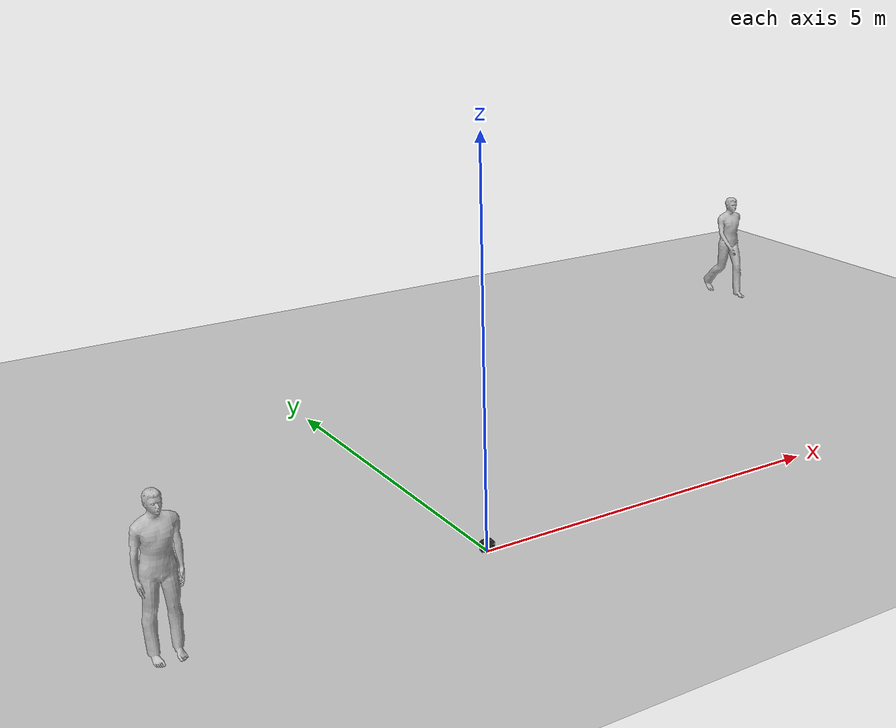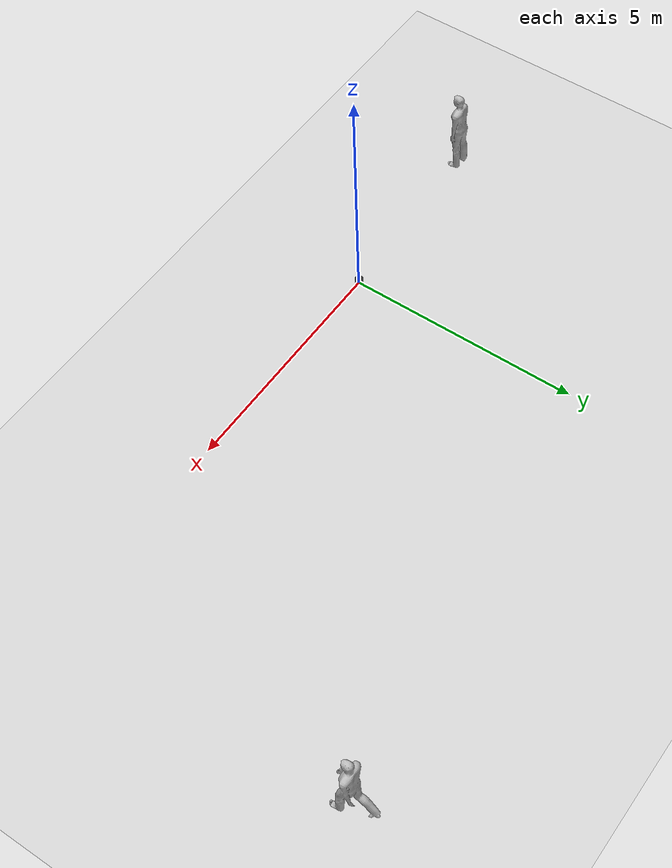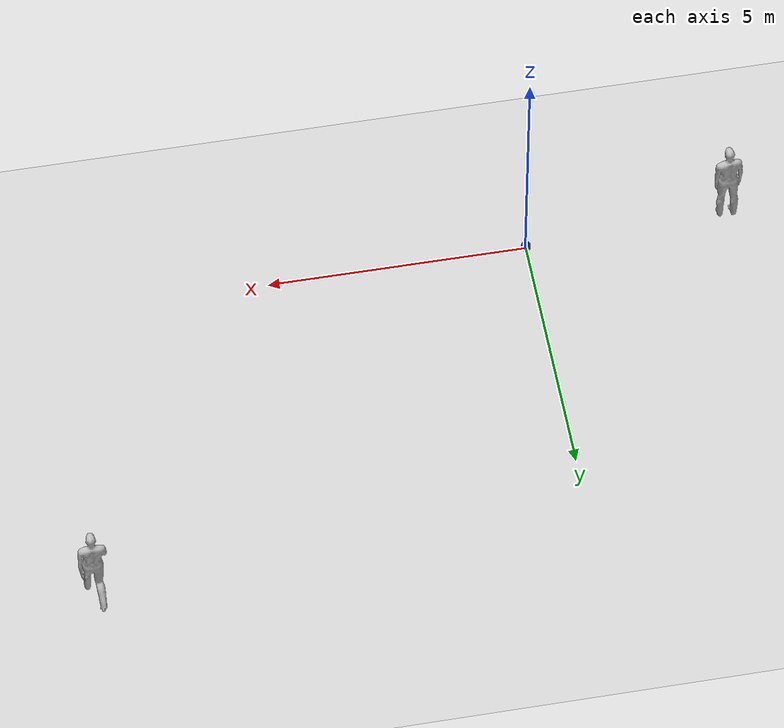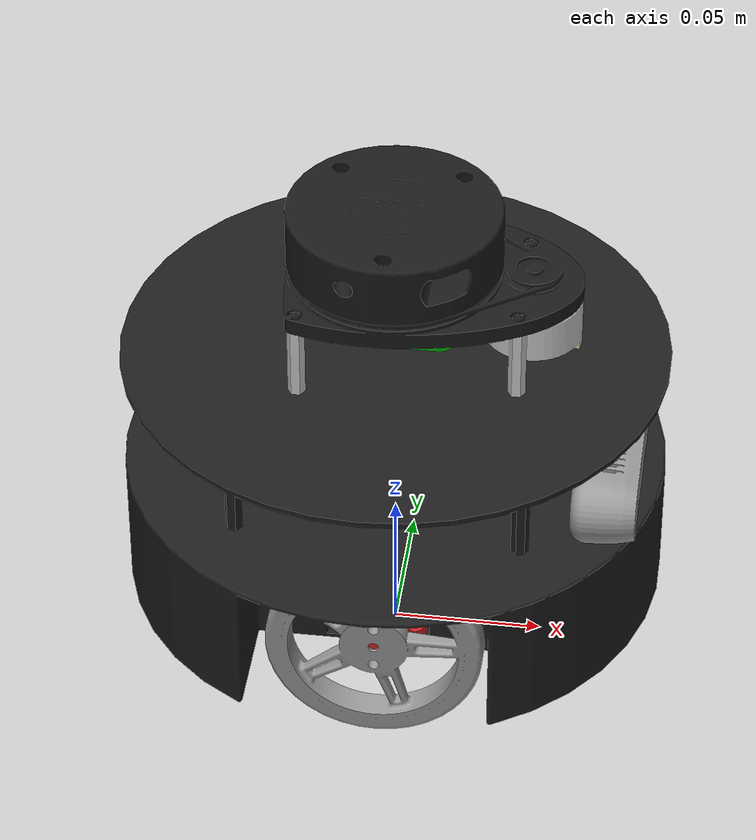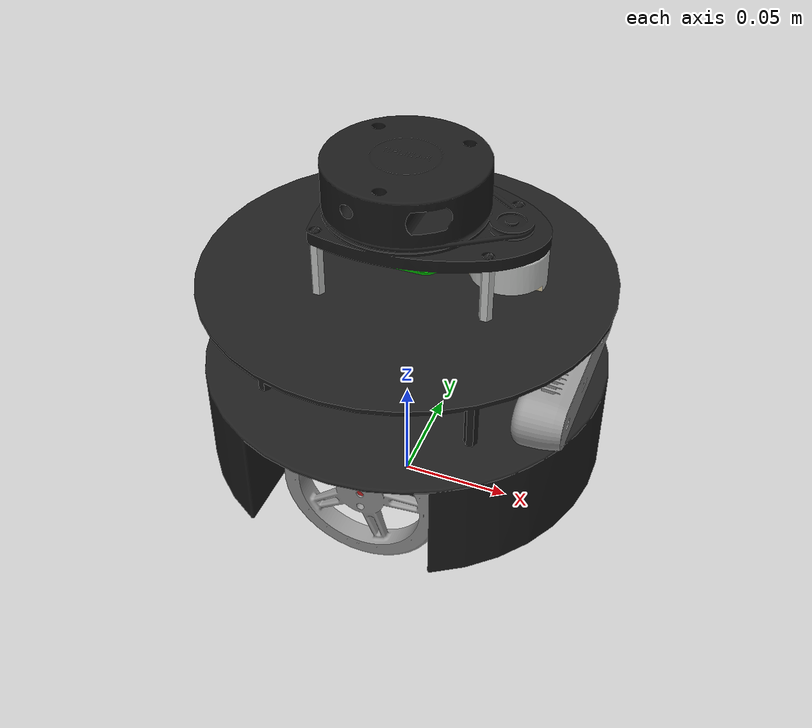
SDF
<sdf version="1.7">
 <world name="default">
  <light name="sun" type="directional">
   <pose>0 0 10 0 -0 0</pose>
   <diffuse>0.8 0.8 0.8 1</diffuse>
   <specular>0.2 0.2 0.2 1</specular>
   <attenuation>
    <range>1000</range>
    <constant>0.9</constant>
    <linear>0.01</linear>
    <quadratic>0.001</quadratic>
   </attenuation>
   <direction>-0.5 0.1 -0.9</direction>
   <spot><inner_angle>0</inner_angle><outer_angle>0</outer_angle><falloff>0</falloff></spot>
  </light>
  <model name="ground_plane">
   <static>1</static>
   <link name="link">
    <collision name="collision">
     <geometry><plane><normal>0 0 1</normal><size>100 100</size></plane></geometry>
     <surface><friction><ode><mu>100</mu><mu2>50</mu2></ode></friction></surface>
    </collision>
    <visual name="visual">
     <cast_shadows>0</cast_shadows>
     <geometry><plane><normal>0 0 1</normal><size>100 100</size></plane></geometry>
     <material>
      <script><uri>file://media/materials/scripts/gazebo.material</uri><name>Gazebo/Grey</name></script>
     </material>
    </visual>
   </link>
  </model>
  <gravity>0 0 -9.8</gravity>
  <magnetic_field>6e-06 2.3e-05 -4.2e-05</magnetic_field>
  <atmosphere type="adiabatic"/>
  <physics type="ode">
   <max_step_size>0.001</max_step_size>
   <real_time_factor>1</real_time_factor>
   <real_time_update_rate>1000</real_time_update_rate>
  </physics>
  <scene><ambient>0.4 0.4 0.4 1</ambient><background>0.7 0.7 0.7 1</background><shadows>1</shadows></scene>
  <audio><device>default</device></audio>
  <spherical_coordinates>
   <surface_model>EARTH_WGS84</surface_model>
   <latitude_deg>0</latitude_deg>
   <longitude_deg>0</longitude_deg>
   <elevation>0</elevation>
   <heading_deg>0</heading_deg>
  </spherical_coordinates>
  <model name="my_robot">
   <link name="base_footprint">
    <inertial>
     <pose>0.00635 0 0.063845 0 -0 0</pose>
     <mass>0.548</mass>
     <inertia>
      <ixx>0.00276354</ixx>
      <ixy>-4.49106e-07</ixy>
      <ixz>-0.000100096</ixz>
      <iyy>0.0027147</iyy>
      <iyz>7.62e-07</iyz>
      <izz>0.00211636</izz>
     </inertia>
    </inertial>
    <collision name="base_footprint_fixed_joint_lump__base_link_collision">
     <pose>0 0 0.028 0 0 -1.5708</pose>
     <geometry>
      <mesh><scale>1 1 1</scale><uri>model://robot_description/meshes/base_link.dae</uri></mesh>
     </geometry>
     <surface><friction><ode><mu>0.01</mu><mu2>0.01</mu2></ode></friction></surface>
    </collision>
    <collision name="base_footprint_fixed_joint_lump__camera_link_collision_1">
     <pose>0.075 0 0.077 0 -0 1.5708</pose>
     <geometry><mesh><scale>1 1 1</scale><uri>model://robot_description/meshes/camera.dae</uri></mesh></geometry>
    </collision>
    <collision name="base_footprint_fixed_joint_lump__left_motor_link_collision_2">
     <pose>0 0.03348 0.036 0 -0 1.5708</pose>
     <geometry><mesh><scale>1 1 1</scale><uri>model://robot_description/meshes/motor.dae</uri></mesh></geometry>
    </collision>
    <collision name="base_footprint_fixed_joint_lump__lidar_link_collision_3">
     <pose>0 0 0.1396 0 0 -1.5708</pose>
     <geometry><mesh><scale>1 1 1</scale><uri>model://robot_description/meshes/rplidar.dae</uri></mesh></geometry>
    </collision>
    <collision name="base_footprint_fixed_joint_lump__right_motor_link_collision_4">
     <pose>0 -0.03348 0.036 0 0 -1.5708</pose>
     <geometry><mesh><scale>1 1 1</scale><uri>model://robot_description/meshes/motor.dae</uri></mesh></geometry>
    </collision>
    <visual name="base_footprint_fixed_joint_lump__base_link_visual">
     <pose>0 0 0.028 0 0 -1.5708</pose>
     <geometry>
      <mesh><scale>1 1 1</scale><uri>model://robot_description/meshes/base_link.dae</uri></mesh>
     </geometry>
     <material>
      <script><name>Gazebo/Black</name><uri>file://media/materials/scripts/gazebo.material</uri></script>
     </material>
    </visual>
    <visual name="base_footprint_fixed_joint_lump__camera_link_visual_1">
     <pose>0.075 0 0.077 0 -0 1.5708</pose>
     <geometry><mesh><scale>1 1 1</scale><uri>model://robot_description/meshes/camera.dae</uri></mesh></geometry>
     <material>
      <script><name>Gazebo/Gray</name><uri>file://media/materials/scripts/gazebo.material</uri></script>
     </material>
    </visual>
    <visual name="base_footprint_fixed_joint_lump__left_motor_link_visual_2">
     <pose>0 0.03348 0.036 0 -0 1.5708</pose>
     <geometry><mesh><scale>1 1 1</scale><uri>model://robot_description/meshes/motor.dae</uri></mesh></geometry>
     <material>
      <script><name>Gazebo/Red</name><uri>file://media/materials/scripts/gazebo.material</uri></script>
     </material>
    </visual>
    <visual name="base_footprint_fixed_joint_lump__lidar_link_visual_3">
     <pose>0 0 0.1396 0 -0 1.5708</pose>
     <geometry><mesh><scale>1 1 1</scale><uri>model://robot_description/meshes/rplidar.dae</uri></mesh></geometry>
    </visual>
    <visual name="base_footprint_fixed_joint_lump__right_motor_link_visual_4">
     <pose>0 -0.03348 0.036 0 0 -1.5708</pose>
     <geometry><mesh><scale>1 1 1</scale><uri>model://robot_description/meshes/motor.dae</uri></mesh></geometry>
     <material>
      <script><name>Gazebo/Red</name><uri>file://media/materials/scripts/gazebo.material</uri></script>
     </material>
    </visual>
    <sensor name="camera_sensor" type="camera">
     <visualize>1</visualize>
     <update_rate>10</update_rate>
     <camera>
      <horizontal_fov>1.0472</horizontal_fov>
      <image><width>640</width><height>480</height></image>
      <clip><near>0.1</near><far>300</far></clip>
     </camera>
     <plugin name="camera_controller" filename="libgazebo_ros_camera.so">
      <frame_name>camera_link_optical</frame_name>
     </plugin>
     <pose>0.087 0 0.0886 0 -0 0</pose>
    </sensor>
    <sensor name="laser" type="ray">
     <visualize>1</visualize>
     <update_rate>10</update_rate>
     <ray>
      <scan>
       <horizontal>
        <samples>720</samples>
        <min_angle>-3.14</min_angle>
        <max_angle>3.14</max_angle>
        <resolution>1</resolution>
       </horizontal>
       <vertical><samples>1</samples><min_angle>0</min_angle><max_angle>0</max_angle></vertical>
      </scan>
      <range><min>0.1</min><max>12</max></range>
     </ray>
     <plugin name="laser_controller" filename="libgazebo_ros_ray_sensor.so">
      <ros><argument>~/out:=scan</argument></ros>
      <output_type>sensor_msgs/LaserScan</output_type>
      <frame_name>laser_frame</frame_name>
     </plugin>
     <pose>0 0 0.164701 0 0 -1.5708</pose>
    </sensor>
   </link>
   <joint name="left_motor_wheel_joint" type="revolute">
    <pose relative_to="base_footprint">0 0.0534 0.036 0 -0 3.14159</pose>
    <parent>base_footprint</parent>
    <child>left_wheel_link</child>
    <axis>
     <xyz>0 -1 0</xyz>
     <limit><lower>-1e+16</lower><upper>1e+16</upper></limit>
     <dynamics><spring_reference>0</spring_reference><spring_stiffness>0</spring_stiffness></dynamics>
    </axis>
   </joint>
   <link name="left_wheel_link">
    <pose relative_to="left_motor_wheel_joint">0 0 0 0 -0 0</pose>
    <inertial>
     <mass>0.016</mass>
     <inertia>
      <ixx>6.7e-07</ixx>
      <ixy>-1.41e-13</ixy>
      <ixz>-2.2e-08</ixz>
      <iyy>1.43e-06</iyy>
      <iyz>-1.12e-10</iyz>
      <izz>1.651e-06</izz>
     </inertia>
    </inertial>
    <collision name="left_wheel_link_collision">
     <pose>0 0 0 0 0 -1.5708</pose>
     <geometry><mesh><scale>1 1 1</scale><uri>model://robot_description/meshes/wheel.dae</uri></mesh></geometry>
     <surface><friction><ode><mu>0.1</mu><mu2>0.1</mu2></ode></friction></surface>
    </collision>
    <visual name="left_wheel_link_visual">
     <pose>0 0 0 0 0 -1.5708</pose>
     <geometry><mesh><scale>1 1 1</scale><uri>model://robot_description/meshes/wheel.dae</uri></mesh></geometry>
     <material>
      <script><name>Gazebo/Grey</name><uri>file://media/materials/scripts/gazebo.material</uri></script>
     </material>
    </visual>
   </link>
   <joint name="right_motor_wheel_joint" type="revolute">
    <pose relative_to="base_footprint">0 -0.0534 0.036 0 0 -3.14159</pose>
    <parent>base_footprint</parent>
    <child>right_wheel_link</child>
    <axis>
     <xyz>0 -1 0</xyz>
     <limit><lower>-1e+16</lower><upper>1e+16</upper></limit>
     <dynamics><spring_reference>0</spring_reference><spring_stiffness>0</spring_stiffness></dynamics>
    </axis>
   </joint>
   <link name="right_wheel_link">
    <pose relative_to="right_motor_wheel_joint">0 0 0 0 -0 0</pose>
    <inertial>
     <mass>0.016</mass>
     <inertia>
      <ixx>6.7e-07</ixx>
      <ixy>-1.41e-13</ixy>
      <ixz>-2.2e-08</ixz>
      <iyy>1.43e-06</iyy>
      <iyz>-1.12e-10</iyz>
      <izz>1.651e-06</izz>
     </inertia>
    </inertial>
    <collision name="right_wheel_link_collision">
     <pose>0 0 0 0 -0 1.5708</pose>
     <geometry><mesh><scale>1 1 1</scale><uri>model://robot_description/meshes/wheel.dae</uri></mesh></geometry>
     <surface><friction><ode><mu>0.1</mu><mu2>0.1</mu2></ode></friction></surface>
    </collision>
    <visual name="right_wheel_link_visual">
     <pose>0 0 0 0 -0 1.5708</pose>
     <geometry><mesh><scale>1 1 1</scale><uri>model://robot_description/meshes/wheel.dae</uri></mesh></geometry>
     <material>
      <script><name>Gazebo/Grey</name><uri>file://media/materials/scripts/gazebo.material</uri></script>
     </material>
    </visual>
   </link>
   <static>0</static>
   <plugin name="diff_drive_controller" filename="libgazebo_ros_diff_drive.so">
    <left_joint>left_motor_wheel_joint</left_joint>
    <right_joint>right_motor_wheel_joint</right_joint>
    <wheel_separation>0.057504</wheel_separation>
    <wheel_diameter>0.072</wheel_diameter>
    <max_wheel_torque>20</max_wheel_torque>
    <max_wheel_acceleration>1.0</max_wheel_acceleration>
    <odometry_frame>odom</odometry_frame>
    <robot_base_frame>base_footprint</robot_base_frame>
    <publish_odom>1</publish_odom>
    <publish_odom_tf>1</publish_odom_tf>
    <publish_wheel_tf>1</publish_wheel_tf>
   </plugin>
   <pose>-0 0 -1.2e-05 0 0 -2e-06</pose>
  </model>
  <model name="person_standing">
   <link name="link">
    <inertial>
     <pose>0 -0.1 0.95 0 -0 0</pose>
     <mass>80</mass>
     <inertia><ixx>24.88</ixx><ixy>0</ixy><ixz>0</ixz><iyy>25.73</iyy><iyz>0</iyz><izz>2.48</izz></inertia>
    </inertial>
    <collision name="bottom">
     <pose>0 -0.1 0.01 0 -0 0</pose>
     <geometry><box><size>0.5 0.35 0.02</size></box></geometry>
    </collision>
    <collision name="person">
     <pose>0 0 0.02 0.04 -0 0</pose>
     <geometry><mesh><uri>model://person_standing/meshes/standing.dae</uri></mesh></geometry>
    </collision>
    <visual name="visual">
     <pose>0 0 0.02 0.04 -0 0</pose>
     <geometry><mesh><uri>model://person_standing/meshes/standing.dae</uri></mesh></geometry>
    </visual>
   </link>
   <pose>-3.94459 -0.087548 -0 1e-06 1e-06 1.8e-05</pose>
  </model>
  <model name="person_walking">
   <link name="link">
    <inertial>
     <pose>0 0 0.95 0 -0 0</pose>
     <mass>80</mass>
     <inertia><ixx>27.82</ixx><ixy>0</ixy><ixz>0</ixz><iyy>24.88</iyy><iyz>0</iyz><izz>4.57</izz></inertia>
    </inertial>
    <collision name="bottom">
     <pose>0 0 0.01 0 -0 0</pose>
     <geometry><box><size>0.35 0.75 0.02</size></box></geometry>
    </collision>
    <collision name="person_1">
     <pose>0 0 -0.02 0 -0 0</pose>
     <geometry><mesh><uri>model://person_walking/meshes/walking.dae</uri></mesh></geometry>
    </collision>
    <visual name="visuall">
     <pose>0 0 -0.02 0 -0 0</pose>
     <geometry><mesh><uri>model://person_walking/meshes/walking.dae</uri></mesh></geometry>
    </visual>
   </link>
   <pose>9.24763 6.3848 0 -1e-06 -0 0.000284</pose>
  </model>
 </world>
</sdf>
